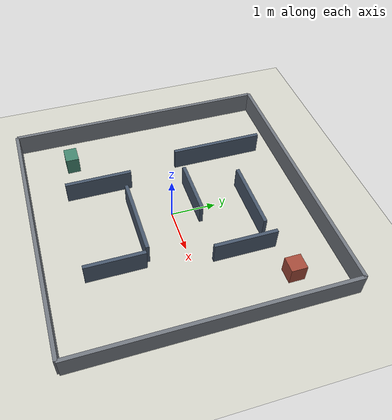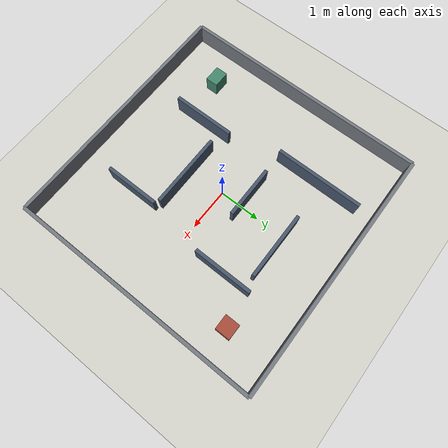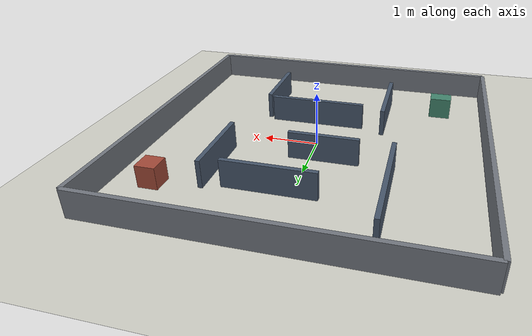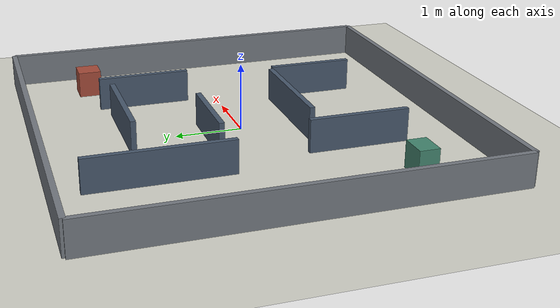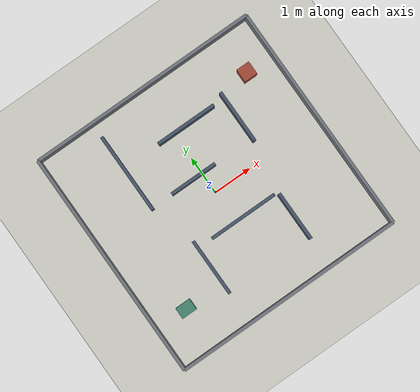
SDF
<?xml version="1.0"?>
<sdf version="1.9">
  <world name="tracked_robot_world">
    <physics name="default_physics" type="ignored">
      <max_step_size>0.001</max_step_size>
      <real_time_factor>1.0</real_time_factor>
      <real_time_update_rate>1000</real_time_update_rate>
    </physics>

    <plugin filename="gz-sim-physics-system" name="gz::sim::systems::Physics"/>
    <plugin filename="gz-sim-user-commands-system" name="gz::sim::systems::UserCommands"/>
    <plugin filename="gz-sim-scene-broadcaster-system" name="gz::sim::systems::SceneBroadcaster"/>
    <plugin filename="gz-sim-sensors-system" name="gz::sim::systems::Sensors">
      <render_engine>ogre2</render_engine>
    </plugin>
    <plugin filename="gz-sim-imu-system" name="gz::sim::systems::Imu"/>

    <light name="sun" type="directional">
      <cast_shadows>true</cast_shadows>
      <pose>0 0 10 0 0 0</pose>
      <diffuse>0.8 0.8 0.8 1</diffuse>
      <specular>0.2 0.2 0.2 1</specular>
      <direction>-0.5 0.1 -0.9</direction>
    </light>

    <model name="ground_plane">
      <static>true</static>
      <link name="link">
        <collision name="collision">
          <geometry>
            <plane>
              <normal>0 0 1</normal>
              <size>12 12</size>
            </plane>
          </geometry>
        </collision>
        <visual name="visual">
          <geometry>
            <plane>
              <normal>0 0 1</normal>
              <size>12 12</size>
            </plane>
          </geometry>
          <material>
            <diffuse>0.82 0.82 0.78 1</diffuse>
          </material>
        </visual>
      </link>
    </model>

    <model name="outer_north">
      <static>true</static>
      <pose>0 3 0.25 0 0 0</pose>
      <link name="link"><collision name="collision"><geometry><box><size>6.0 0.08 0.5</size></box></geometry></collision><visual name="visual"><geometry><box><size>6.0 0.08 0.5</size></box></geometry><material><diffuse>0.45 0.47 0.50 1</diffuse></material></visual></link>
    </model>
    <model name="outer_south">
      <static>true</static>
      <pose>0 -3 0.25 0 0 0</pose>
      <link name="link"><collision name="collision"><geometry><box><size>6.0 0.08 0.5</size></box></geometry></collision><visual name="visual"><geometry><box><size>6.0 0.08 0.5</size></box></geometry><material><diffuse>0.45 0.47 0.50 1</diffuse></material></visual></link>
    </model>
    <model name="outer_east">
      <static>true</static>
      <pose>3 0 0.25 0 0 0</pose>
      <link name="link"><collision name="collision"><geometry><box><size>0.08 6.0 0.5</size></box></geometry></collision><visual name="visual"><geometry><box><size>0.08 6.0 0.5</size></box></geometry><material><diffuse>0.45 0.47 0.50 1</diffuse></material></visual></link>
    </model>
    <model name="outer_west">
      <static>true</static>
      <pose>-3 0 0.25 0 0 0</pose>
      <link name="link"><collision name="collision"><geometry><box><size>0.08 6.0 0.5</size></box></geometry></collision><visual name="visual"><geometry><box><size>0.08 6.0 0.5</size></box></geometry><material><diffuse>0.45 0.47 0.50 1</diffuse></material></visual></link>
    </model>

    <model name="wall_nw_vertical">
      <static>true</static>
      <pose>-1.45 1.55 0.25 0 0 0</pose>
      <link name="link"><collision name="collision"><geometry><box><size>0.08 2.1 0.5</size></box></geometry></collision><visual name="visual"><geometry><box><size>0.08 2.1 0.5</size></box></geometry><material><diffuse>0.28 0.34 0.42 1</diffuse></material></visual></link>
    </model>
    <model name="wall_ne_vertical">
      <static>true</static>
      <pose>1.45 1.15 0.25 0 0 0</pose>
      <link name="link"><collision name="collision"><geometry><box><size>0.08 1.4 0.5</size></box></geometry></collision><visual name="visual"><geometry><box><size>0.08 1.4 0.5</size></box></geometry><material><diffuse>0.28 0.34 0.42 1</diffuse></material></visual></link>
    </model>
    <model name="wall_sw_vertical">
      <static>true</static>
      <pose>-1.1 -1.4 0.25 0 0 0</pose>
      <link name="link"><collision name="collision"><geometry><box><size>0.08 1.5 0.5</size></box></geometry></collision><visual name="visual"><geometry><box><size>0.08 1.5 0.5</size></box></geometry><material><diffuse>0.28 0.34 0.42 1</diffuse></material></visual></link>
    </model>
    <model name="wall_se_vertical">
      <static>true</static>
      <pose>1.2 -1.55 0.25 0 0 0</pose>
      <link name="link"><collision name="collision"><geometry><box><size>0.08 1.3 0.5</size></box></geometry></collision><visual name="visual"><geometry><box><size>0.08 1.3 0.5</size></box></geometry><material><diffuse>0.28 0.34 0.42 1</diffuse></material></visual></link>
    </model>

    <model name="wall_north_corridor">
      <static>true</static>
      <pose>0.35 1.7 0.25 0 0 0</pose>
      <link name="link"><collision name="collision"><geometry><box><size>1.6 0.08 0.5</size></box></geometry></collision><visual name="visual"><geometry><box><size>1.6 0.08 0.5</size></box></geometry><material><diffuse>0.28 0.34 0.42 1</diffuse></material></visual></link>
    </model>
    <model name="wall_center_corridor">
      <static>true</static>
      <pose>-0.25 0.55 0.25 0 0 0</pose>
      <link name="link"><collision name="collision"><geometry><box><size>1.25 0.08 0.5</size></box></geometry></collision><visual name="visual"><geometry><box><size>1.25 0.08 0.5</size></box></geometry><material><diffuse>0.28 0.34 0.42 1</diffuse></material></visual></link>
    </model>
    <model name="wall_south_corridor">
      <static>true</static>
      <pose>0.2 -0.85 0.25 0 0 0</pose>
      <link name="link"><collision name="collision"><geometry><box><size>1.8 0.08 0.5</size></box></geometry></collision><visual name="visual"><geometry><box><size>1.8 0.08 0.5</size></box></geometry><material><diffuse>0.28 0.34 0.42 1</diffuse></material></visual></link>
    </model>

    <model name="box_landmark_a">
      <static>true</static>
      <pose>2.25 1.9 0.2 0 0 0</pose>
      <link name="link"><collision name="collision"><geometry><box><size>0.35 0.35 0.4</size></box></geometry></collision><visual name="visual"><geometry><box><size>0.35 0.35 0.4</size></box></geometry><material><diffuse>0.64 0.29 0.22 1</diffuse></material></visual></link>
    </model>
    <model name="box_landmark_b">
      <static>true</static>
      <pose>-2.15 -1.85 0.2 0 0 0</pose>
      <link name="link"><collision name="collision"><geometry><box><size>0.40 0.30 0.4</size></box></geometry></collision><visual name="visual"><geometry><box><size>0.40 0.30 0.4</size></box></geometry><material><diffuse>0.26 0.52 0.43 1</diffuse></material></visual></link>
    </model>
  </world>
</sdf>
